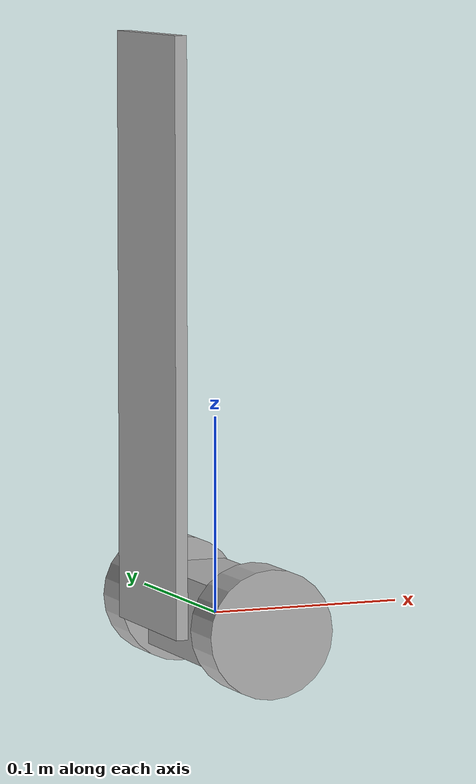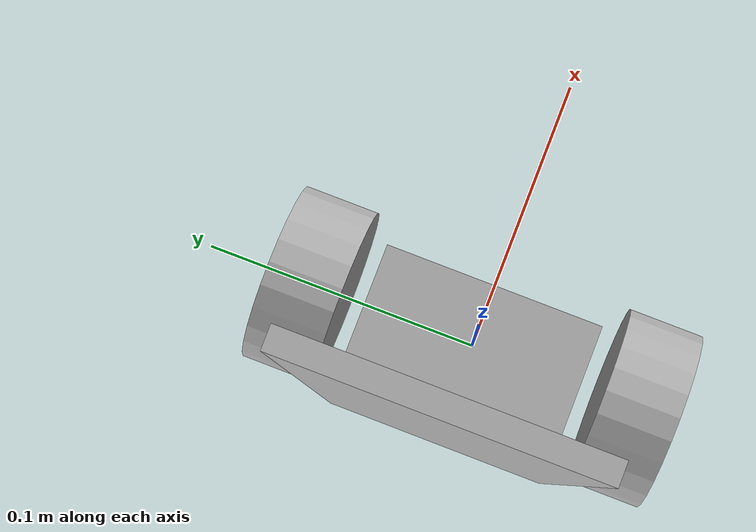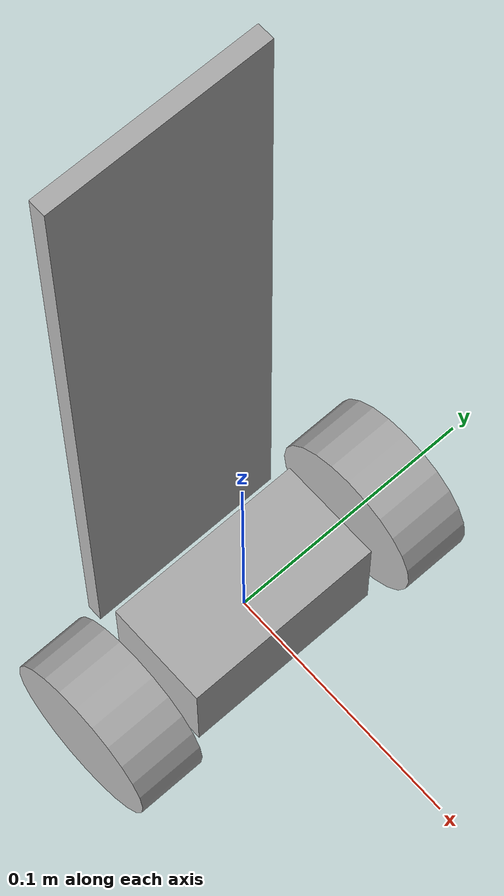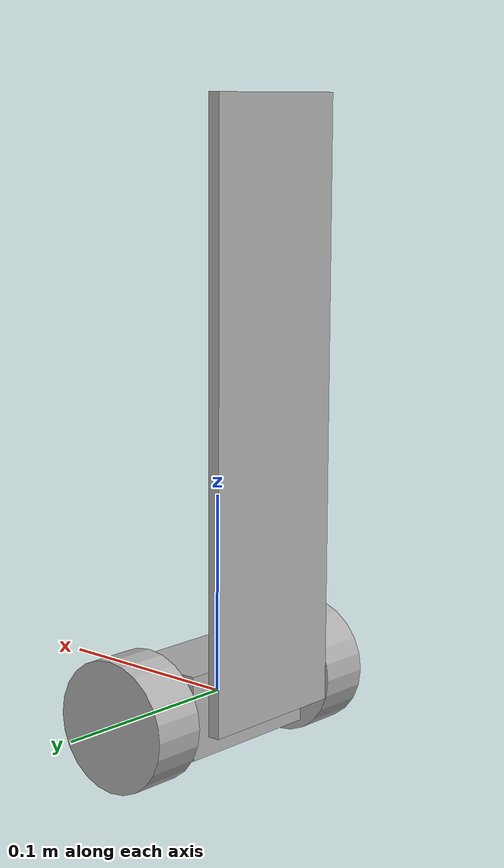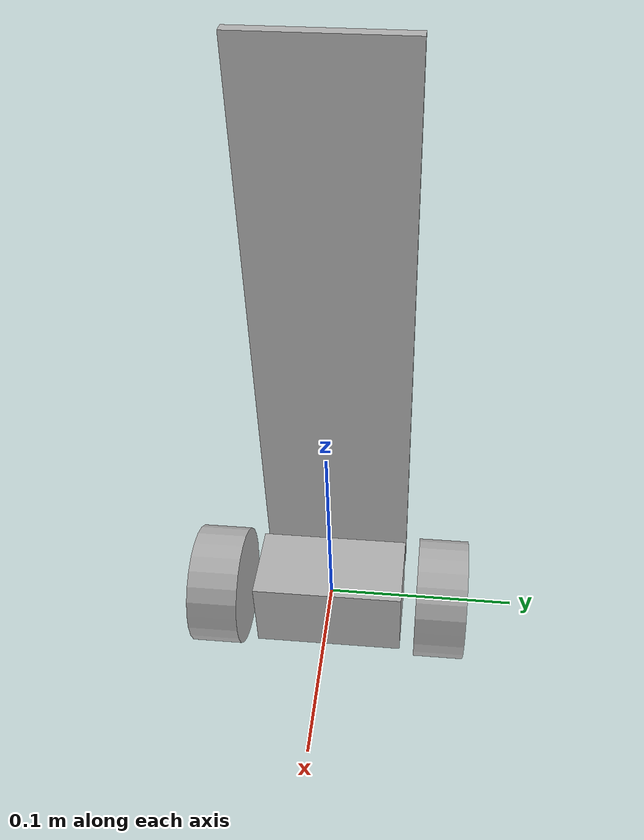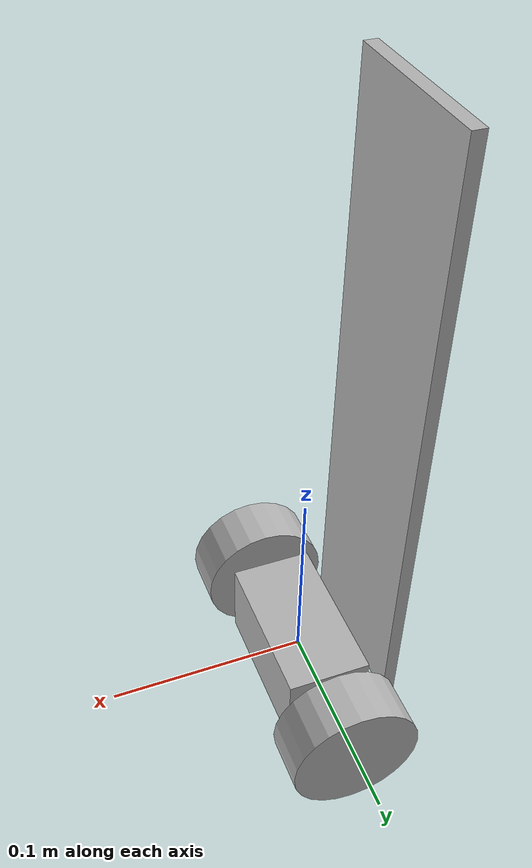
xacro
<?xml version="1.0"?>
<!-- xacro ~/pisaBot/src/localization/urdf/bot.xacro > ~/pisaBot/src/localization/urdf/bot.xml && roslaunch logger visualize_bot.launch -->
<robot xmlns:xacro="http://www.ros.org/wiki/xacro" name="pisaBot">
    <xacro:property name="wheel_diameter" value="0.065" />
    <xacro:property name="wheel_to_wheel_distance" value="0.123" />
    <xacro:property name="back_thickness" value="0.00625" />
    <xacro:property name="rad_per_deg" value="${pi/180}" />

    <xacro:property name="mpu_roll" value="2.9" />
    <xacro:property name="mpu_pitch" value="0.6" />
    <xacro:property name="mpu_yaw" value="-1.0" />
    <xacro:macro name="material">
        <material name="Grey">
            <color rgba="0.7 0.7 0.7 1.0"/>
        </material>
    </xacro:macro>

    <link name="body">
        <visual>
            <origin xyz="${back_thickness/2 - 0.037} 0 ${0.15-0.006}" rpy="0 0 0" />
            <geometry>
                <box size="${back_thickness} 0.08 0.3" />
            </geometry>
            <xacro:material/>
        </visual>
        <visual>
            <origin xyz="0 0 0" rpy="${pi/2} 0 0" />
            <geometry>
                <box size="0.042 0.042 0.08" />
            </geometry>
            <xacro:material/>
        </visual>
        <visual>
            <origin xyz="0 ${wheel_to_wheel_distance/2} 0" rpy="${pi/2} 0 0" />
            <geometry>
                <cylinder length="0.027" radius="${wheel_diameter/2}"/>
            </geometry>
            <xacro:material/>
        </visual>
        <visual>
            <origin xyz="0 ${-wheel_to_wheel_distance/2} 0" rpy="${-pi/2} 0 0" />
            <geometry>
                <cylinder length="0.027" radius="${wheel_diameter/2}"/>
            </geometry>
            <xacro:material/>
        </visual>
    </link>

    <link name="mpu"/>
    <link name="ideal_mpu"/>

    <joint name="body_to_ideal_mpu" type="fixed">
        <parent link="body" />
        <child link="ideal_mpu" />
        <origin
            xyz="${back_thickness/2 - 0.037 + 0.0375 - 0.002} 0.01 0.157"
            rpy="${0} ${pi/2} ${pi}" />
    </joint>
    <!-- 0.157 m above the center
    0.002286 m off center
    37.5 cm in front of the back, the board is 1.5 mm thick -->

    <joint name="ideal_mpu_to_mpu" type="fixed">
        <parent link="ideal_mpu" />
        <child link="mpu" />
        <origin
            xyz="0 0 0"
            rpy="${mpu_roll * rad_per_deg} ${mpu_pitch * rad_per_deg} ${mpu_yaw * rad_per_deg}" />
    </joint>
</robot>
